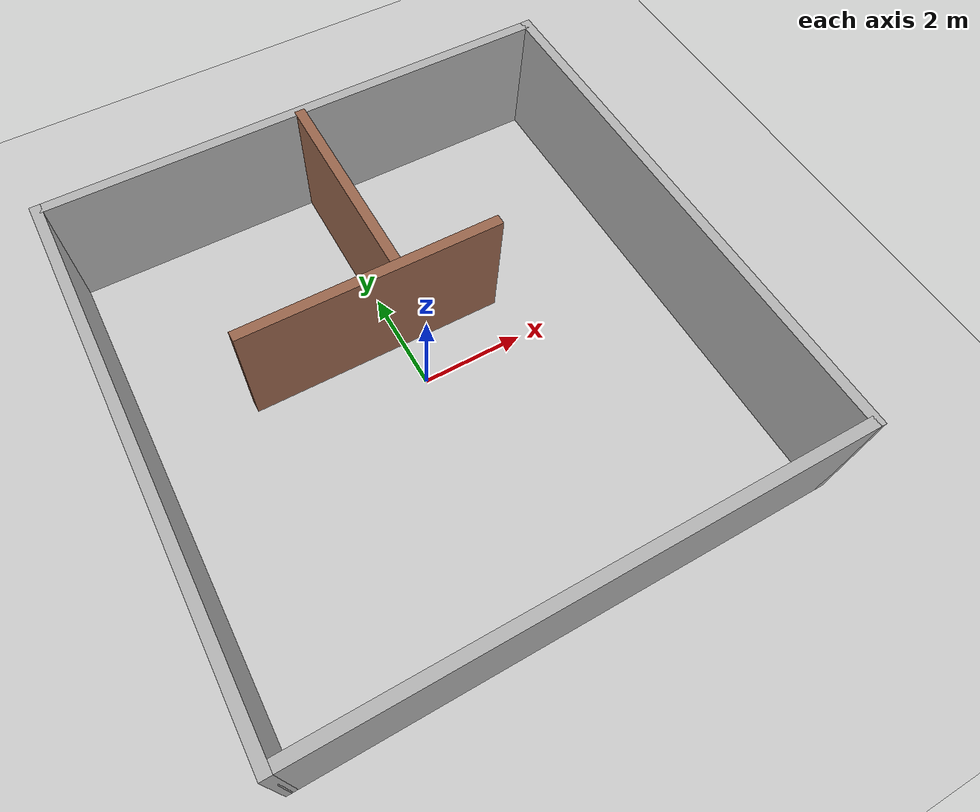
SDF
<sdf version='1.10'>
  <world name='empty'>
    <physics name='1ms' type='ignored'>
      <max_step_size>0.001</max_step_size>
      <real_time_factor>1</real_time_factor>
      <real_time_update_rate>1000</real_time_update_rate>
    </physics>
    <plugin name='gz::sim::systems::Physics' filename='gz-sim-physics-system'/>
    <plugin name='gz::sim::systems::UserCommands' filename='gz-sim-user-commands-system'/>
    <plugin name='gz::sim::systems::SceneBroadcaster' filename='gz-sim-scene-broadcaster-system'/>
    <plugin name='gz::sim::systems::Contact' filename='gz-sim-contact-system'/>
        <plugin
        name='gz::sim::systems::Sensors'
        filename='gz-sim-sensors-system'>
        <render_engine>ogre2</render_engine>
    </plugin>
    <gravity>0 0 -9.8000000000000007</gravity>
    <magnetic_field>5.5644999999999998e-06 2.2875799999999999e-05 -4.2388400000000002e-05</magnetic_field>
    <atmosphere type='adiabatic'/>
    <scene>
      <ambient>0.400000006 0.400000006 0.400000006 1</ambient>
      <background>0.699999988 0.699999988 0.699999988 1</background>
      <shadows>true</shadows>
    </scene>

    <model name='ground_plane'>
      <static>true</static>
      <link name='link'>
        <collision name='collision'>
          <geometry>
            <plane>
              <normal>0 0 1</normal>
              <size>100 100</size>
            </plane>
          </geometry>
          <surface>
            <friction>
              <ode/>
            </friction>
            <bounce/>
            <contact/>
          </surface>
        </collision>
        <visual name='visual'>
          <geometry>
            <plane>
              <normal>0 0 1</normal>
              <size>100 100</size>
            </plane>
          </geometry>
          <material>
            <ambient>0.800000012 0.800000012 0.800000012 1</ambient>
            <diffuse>0.800000012 0.800000012 0.800000012 1</diffuse>
            <specular>0.800000012 0.800000012 0.800000012 1</specular>
          </material>
        </visual>
        <pose>0 0 0 0 0 0</pose>
        <inertial>
          <pose>0 0 0 0 0 0</pose>
          <mass>1</mass>
          <inertia>
            <ixx>1</ixx>
            <ixy>0</ixy>
            <ixz>0</ixz>
            <iyy>1</iyy>
            <iyz>0</iyz>
            <izz>1</izz>
          </inertia>
        </inertial>
        <enable_wind>false</enable_wind>
      </link>
      <pose>0 0 0 0 0 0</pose>
      <self_collide>false</self_collide>
    </model>
    <light name='sun' type='directional'>
      <pose>0 0 10 0 0 0</pose>
      <cast_shadows>true</cast_shadows>
      <intensity>1</intensity>
      <direction>-0.5 0.10000000000000001 -0.90000000000000002</direction>
      <diffuse>0.800000012 0.800000012 0.800000012 1</diffuse>
      <specular>0.200000003 0.200000003 0.200000003 1</specular>
      <attenuation>
        <range>1000</range>
        <linear>0.01</linear>
        <constant>0.90000000000000002</constant>
        <quadratic>0.001</quadratic>
      </attenuation>
      <spot>
        <inner_angle>0</inner_angle>
        <outer_angle>0</outer_angle>
        <falloff>0</falloff>
      </spot>
    </light>

    <!-- CUSTOM ROOM WITH A NAVIGABLE PATHWAY -->
    <model name='room'>
      <static>true</static>

      <!-- WALL 1: North Outer Wall -->
      <link name='wall_north'>
        <pose>5 0 1.25 0 0 0</pose>
        <collision name='collision'>
          <geometry><box><size>0.2 10.2 2.5</size></box></geometry>
        </collision>
        <visual name='visual'>
          <geometry><box><size>0.2 10.2 2.5</size></box></geometry>
          <material>
            <ambient>0.7 0.7 0.7 1</ambient>
            <diffuse>0.7 0.7 0.7 1</diffuse>
          </material>
        </visual>
      </link>

      <!-- WALL 2: South Outer Wall -->
      <link name='wall_south'>
        <pose>-5 0 1.25 0 0 0</pose>
        <collision name='collision'>
          <geometry><box><size>0.2 10.2 2.5</size></box></geometry>
        </collision>
        <visual name='visual'>
          <geometry><box><size>0.2 10.2 2.5</size></box></geometry>
          <material>
            <ambient>0.7 0.7 0.7 1</ambient>
            <diffuse>0.7 0.7 0.7 1</diffuse>
          </material>
        </visual>
      </link>

      <!-- WALL 3: East Outer Wall -->
      <link name='wall_east'>
        <pose>0 -5 1.25 0 0 0</pose>
        <collision name='collision'>
          <geometry><box><size>10 0.2 2.5</size></box></geometry>
        </collision>
        <visual name='visual'>
          <geometry><box><size>10 0.2 2.5</size></box></geometry>
          <material>
            <ambient>0.7 0.7 0.7 1</ambient>
            <diffuse>0.7 0.7 0.7 1</diffuse>
          </material>
        </visual>
      </link>

      <!-- WALL 4: West Outer Wall -->
      <link name='wall_west'>
        <pose>0 5 1.25 0 0 0</pose>
        <collision name='collision'>
          <geometry><box><size>10 0.2 2.5</size></box></geometry>
        </collision>
        <visual name='visual'>
          <geometry><box><size>10 0.2 2.5</size></box></geometry>
          <material>
            <ambient>0.7 0.7 0.7 1</ambient>
            <diffuse>0.7 0.7 0.7 1</diffuse>
          </material>
        </visual>
      </link>

      <!-- PARTITION SEGMENT A (Left Side) -->
      <link name='partition_left'>
        <pose>0 3.0 1.25 0 0 0</pose> <!-- Shifted upward -->
        <collision name='collision'>
          <geometry><box><size>0.2 6.0 2.5</size></box></geometry> <!-- 4m length -->
        </collision>
        <visual name='visual'>
          <geometry><box><size>0.2 4.0 2.5</size></box></geometry>
          <material>
            <ambient>0.6 0.4 0.3 1</ambient>
            <diffuse>0.6 0.4 0.3 1</diffuse>
          </material>
        </visual>
      </link>

      <link name="ext_left">
        <!-- Shifted down to meet the edge, and forward into the room -->
        <pose>-0.5 1.0 1.25 0 0 1.57</pose>
        <collision name='collision'>
          <geometry><box><size>0.2 5.0 2.5</size></box></geometry>
        </collision>
        <visual name='visual'>
          <geometry><box><size>0.2 5.0 2.5</size></box></geometry>
          <material>
            <ambient>0.6 0.4 0.3 1</ambient>
            <diffuse>0.6 0.4 0.3 1</diffuse>
          </material>
        </visual>
      </link>

    </model>

  </world>
</sdf>
